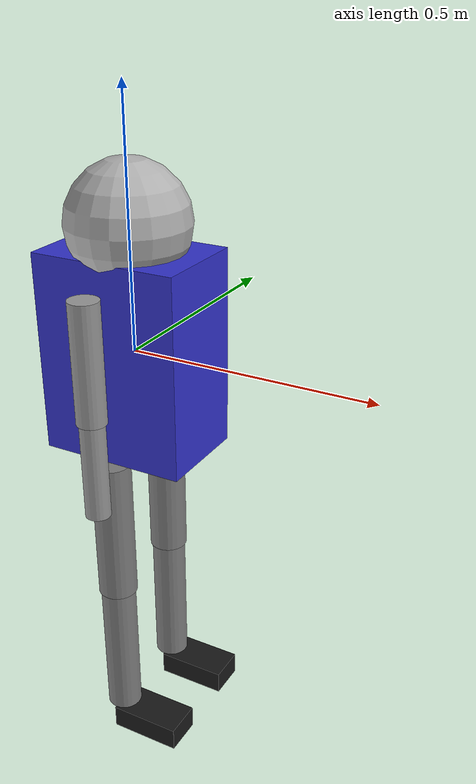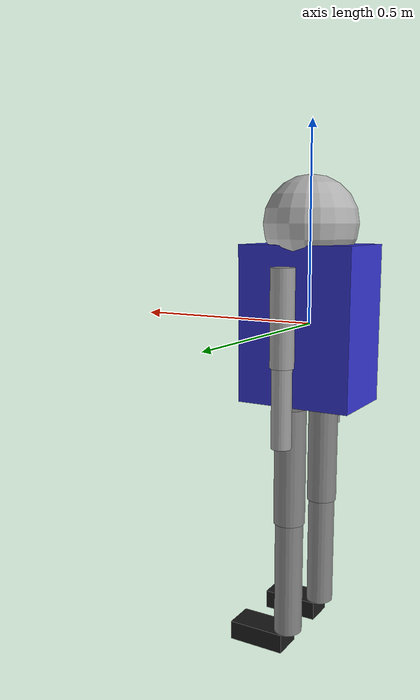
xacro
<?xml version="1.0"?>
<robot xmlns:xacro="http://www.ros.org/wiki/xacro" name="humanoid_xacro">

  <!-- Include macros -->
  <xacro:include filename="$(find humanoid_description)/urdf/macros/inertia.xacro"/>
  <xacro:include filename="$(find humanoid_description)/urdf/macros/leg.xacro"/>

  <!-- ========== PROPERTIES ========== -->
  <xacro:property name="leg_hip_length" value="0.3"/>
  <xacro:property name="leg_knee_length" value="0.3"/>
  <xacro:property name="leg_foot_length" value="0.15"/>
  <xacro:property name="leg_foot_width" value="0.08"/>
  <xacro:property name="leg_hip_mass" value="3.0"/>
  <xacro:property name="leg_knee_mass" value="2.0"/>
  <xacro:property name="leg_foot_mass" value="1.0"/>
  <xacro:property name="leg_radius" value="0.04"/>

  <xacro:property name="arm_shoulder_length" value="0.24"/>
  <xacro:property name="arm_elbow_length" value="0.2"/>
  <xacro:property name="arm_shoulder_mass" value="1.5"/>
  <xacro:property name="arm_elbow_mass" value="1.0"/>
  <xacro:property name="arm_radius" value="0.03"/>

  <!-- ========== TORSO (BASE LINK) ========== -->
  <link name="base_link">
    <visual>
      <geometry>
        <box size="0.3 0.2 0.4"/>
      </geometry>
      <material name="torso_blue">
        <color rgba="0.2 0.2 0.8 1.0"/>
      </material>
    </visual>
    <collision>
      <geometry>
        <box size="0.3 0.2 0.4"/>
      </geometry>
    </collision>
    <xacro:box_inertia mass="15.0" x="0.3" y="0.2" z="0.4" xyz="0 0 0"/>
  </link>

  <!-- ========== HEAD ========== -->
  <link name="head">
    <visual>
      <geometry>
        <sphere radius="0.12"/>
      </geometry>
      <material name="head_gray">
        <color rgba="0.7 0.7 0.7 1.0"/>
      </material>
    </visual>
    <collision>
      <geometry>
        <sphere radius="0.12"/>
      </geometry>
    </collision>
    <xacro:sphere_inertia mass="2.0" radius="0.12"/>
  </link>

  <joint name="neck_joint" type="revolute">
    <parent link="base_link"/>
    <child link="head"/>
    <origin xyz="0 0 0.25" rpy="0 0 0"/>
    <axis xyz="0 0 1"/>
    <limit lower="-0.785" upper="0.785" effort="10.0" velocity="2.0"/>
    <dynamics damping="0.5" friction="0.1"/>
  </joint>

  <!-- ========== INSTANTIATE LEGS ========== -->
  <xacro:leg prefix="left" reflect="1">
    <origin xyz="0 0.1 -0.2" rpy="0 0 0"/>
  </xacro:leg>

  <xacro:leg prefix="right" reflect="-1">
    <origin xyz="0 -0.1 -0.2" rpy="0 0 0"/>
  </xacro:leg>

  <!-- ========== LEFT ARM ========== -->
  <link name="left_shoulder">
    <visual>
      <origin xyz="0 0 ${-arm_shoulder_length/2}" rpy="0 0 0"/>
      <geometry>
        <cylinder length="${arm_shoulder_length}" radius="${arm_radius}"/>
      </geometry>
      <material name="arm_gray">
        <color rgba="0.6 0.6 0.6 1.0"/>
      </material>
    </visual>
    <collision>
      <origin xyz="0 0 ${-arm_shoulder_length/2}" rpy="0 0 0"/>
      <geometry>
        <cylinder length="${arm_shoulder_length}" radius="${arm_radius}"/>
      </geometry>
    </collision>
    <xacro:cylinder_inertia mass="${arm_shoulder_mass}"
                            radius="${arm_radius}"
                            length="${arm_shoulder_length}"
                            xyz="0 0 ${-arm_shoulder_length/2}"/>
  </link>

  <joint name="left_shoulder_joint" type="revolute">
    <parent link="base_link"/>
    <child link="left_shoulder"/>
    <origin xyz="0 0.15 0.15" rpy="0 0 0"/>
    <axis xyz="0 1 0"/>
    <limit lower="-1.57" upper="1.57" effort="80.0" velocity="2.5"/>
    <dynamics damping="0.5" friction="0.1"/>
  </joint>

  <link name="left_elbow">
    <visual>
      <origin xyz="0 0 ${-arm_elbow_length/2}" rpy="0 0 0"/>
      <geometry>
        <cylinder length="${arm_elbow_length}" radius="${arm_radius * 0.85}"/>
      </geometry>
      <material name="arm_gray"/>
    </visual>
    <collision>
      <origin xyz="0 0 ${-arm_elbow_length/2}" rpy="0 0 0"/>
      <geometry>
        <cylinder length="${arm_elbow_length}" radius="${arm_radius * 0.85}"/>
      </geometry>
    </collision>
    <xacro:cylinder_inertia mass="${arm_elbow_mass}"
                            radius="${arm_radius * 0.85}"
                            length="${arm_elbow_length}"
                            xyz="0 0 ${-arm_elbow_length/2}"/>
  </link>

  <joint name="left_elbow_joint" type="revolute">
    <parent link="left_shoulder"/>
    <child link="left_elbow"/>
    <origin xyz="0 0 ${-arm_shoulder_length}" rpy="0 0 0"/>
    <axis xyz="0 1 0"/>
    <limit lower="0.0" upper="2.356" effort="60.0" velocity="2.5"/>
    <dynamics damping="0.3" friction="0.05"/>
  </joint>

  <!-- ========== RIGHT ARM (SYMMETRIC) ========== -->
  <link name="right_shoulder">
    <visual>
      <origin xyz="0 0 ${-arm_shoulder_length/2}" rpy="0 0 0"/>
      <geometry>
        <cylinder length="${arm_shoulder_length}" radius="${arm_radius}"/>
      </geometry>
      <material name="arm_gray"/>
    </visual>
    <collision>
      <origin xyz="0 0 ${-arm_shoulder_length/2}" rpy="0 0 0"/>
      <geometry>
        <cylinder length="${arm_shoulder_length}" radius="${arm_radius}"/>
      </geometry>
    </collision>
    <xacro:cylinder_inertia mass="${arm_shoulder_mass}"
                            radius="${arm_radius}"
                            length="${arm_shoulder_length}"
                            xyz="0 0 ${-arm_shoulder_length/2}"/>
  </link>

  <joint name="right_shoulder_joint" type="revolute">
    <parent link="base_link"/>
    <child link="right_shoulder"/>
    <origin xyz="0 -0.15 0.15" rpy="0 0 0"/>
    <axis xyz="0 1 0"/>
    <limit lower="-1.57" upper="1.57" effort="80.0" velocity="2.5"/>
    <dynamics damping="0.5" friction="0.1"/>
  </joint>

  <link name="right_elbow">
    <visual>
      <origin xyz="0 0 ${-arm_elbow_length/2}" rpy="0 0 0"/>
      <geometry>
        <cylinder length="${arm_elbow_length}" radius="${arm_radius * 0.85}"/>
      </geometry>
      <material name="arm_gray"/>
    </visual>
    <collision>
      <origin xyz="0 0 ${-arm_elbow_length/2}" rpy="0 0 0"/>
      <geometry>
        <cylinder length="${arm_elbow_length}" radius="${arm_radius * 0.85}"/>
      </geometry>
    </collision>
    <xacro:cylinder_inertia mass="${arm_elbow_mass}"
                            radius="${arm_radius * 0.85}"
                            length="${arm_elbow_length}"
                            xyz="0 0 ${-arm_elbow_length/2}"/>
  </link>

  <joint name="right_elbow_joint" type="revolute">
    <parent link="right_shoulder"/>
    <child link="right_elbow"/>
    <origin xyz="0 0 ${-arm_shoulder_length}" rpy="0 0 0"/>
    <axis xyz="0 1 0"/>
    <limit lower="0.0" upper="2.356" effort="60.0" velocity="2.5"/>
    <dynamics damping="0.3" friction="0.05"/>
  </joint>

</robot>

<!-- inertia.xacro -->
<robot xmlns:xacro="http://www.ros.org/wiki/xacro">

  <!-- Cylinder Inertia (axis along Z) -->
  <xacro:macro name="cylinder_inertia" params="mass radius length xyz">
    <inertial>
      <origin xyz="${xyz}" rpy="0 0 0"/>
      <mass value="${mass}"/>
      <inertia ixx="${mass * (3*radius*radius + length*length) / 12}"
               ixy="0.0" ixz="0.0"
               iyy="${mass * (3*radius*radius + length*length) / 12}"
               iyz="0.0"
               izz="${mass * radius * radius / 2}"/>
    </inertial>
  </xacro:macro>

  <!-- Box Inertia -->
  <xacro:macro name="box_inertia" params="mass x y z xyz">
    <inertial>
      <origin xyz="${xyz}" rpy="0 0 0"/>
      <mass value="${mass}"/>
      <inertia ixx="${mass * (y*y + z*z) / 12}"
               ixy="0.0" ixz="0.0"
               iyy="${mass * (x*x + z*z) / 12}"
               iyz="0.0"
               izz="${mass * (x*x + y*y) / 12}"/>
    </inertial>
  </xacro:macro>

  <!-- Sphere Inertia -->
  <xacro:macro name="sphere_inertia" params="mass radius">
    <inertial>
      <mass value="${mass}"/>
      <inertia ixx="${2 * mass * radius * radius / 5}"
               ixy="0.0" ixz="0.0"
               iyy="${2 * mass * radius * radius / 5}"
               iyz="0.0"
               izz="${2 * mass * radius * radius / 5}"/>
    </inertial>
  </xacro:macro>

</robot>

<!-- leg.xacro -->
<robot xmlns:xacro="http://www.ros.org/wiki/xacro">

  <xacro:macro name="leg" params="prefix reflect *origin">

    <!-- Hip Link -->
    <link name="${prefix}_hip">
      <visual>
        <origin xyz="0 0 ${-leg_hip_length/2}" rpy="0 0 0"/>
        <geometry>
          <cylinder length="${leg_hip_length}" radius="${leg_radius}"/>
        </geometry>
        <material name="leg_gray">
          <color rgba="0.5 0.5 0.5 1.0"/>
        </material>
      </visual>
      <collision>
        <origin xyz="0 0 ${-leg_hip_length/2}" rpy="0 0 0"/>
        <geometry>
          <cylinder length="${leg_hip_length}" radius="${leg_radius}"/>
        </geometry>
      </collision>
      <xacro:cylinder_inertia mass="${leg_hip_mass}"
                              radius="${leg_radius}"
                              length="${leg_hip_length}"
                              xyz="0 0 ${-leg_hip_length/2}"/>
    </link>

    <joint name="${prefix}_hip_joint" type="revolute">
      <xacro:insert_block name="origin"/>
      <parent link="base_link"/>
      <child link="${prefix}_hip"/>
      <axis xyz="0 1 0"/>
      <limit lower="-1.57" upper="1.57" effort="150.0" velocity="3.0"/>
      <dynamics damping="1.0" friction="0.2"/>
    </joint>

    <!-- Knee Link -->
    <link name="${prefix}_knee">
      <visual>
        <origin xyz="0 0 ${-leg_knee_length/2}" rpy="0 0 0"/>
        <geometry>
          <cylinder length="${leg_knee_length}" radius="${leg_radius * 0.9}"/>
        </geometry>
        <material name="leg_gray"/>
      </visual>
      <collision>
        <origin xyz="0 0 ${-leg_knee_length/2}" rpy="0 0 0"/>
        <geometry>
          <cylinder length="${leg_knee_length}" radius="${leg_radius * 0.9}"/>
        </geometry>
      </collision>
      <xacro:cylinder_inertia mass="${leg_knee_mass}"
                              radius="${leg_radius * 0.9}"
                              length="${leg_knee_length}"
                              xyz="0 0 ${-leg_knee_length/2}"/>
    </link>

    <joint name="${prefix}_knee_joint" type="revolute">
      <parent link="${prefix}_hip"/>
      <child link="${prefix}_knee"/>
      <origin xyz="0 0 ${-leg_hip_length}" rpy="0 0 0"/>
      <axis xyz="0 1 0"/>
      <limit lower="0.0" upper="2.356" effort="150.0" velocity="3.0"/>
      <dynamics damping="1.0" friction="0.2"/>
    </joint>

    <!-- Ankle/Foot -->
    <link name="${prefix}_foot">
      <visual>
        <origin xyz="${leg_foot_length/2} 0 -0.025" rpy="0 0 0"/>
        <geometry>
          <box size="${leg_foot_length} ${leg_foot_width} 0.05"/>
        </geometry>
        <material name="foot_black">
          <color rgba="0.1 0.1 0.1 1.0"/>
        </material>
      </visual>
      <collision>
        <origin xyz="${leg_foot_length/2} 0 -0.025" rpy="0 0 0"/>
        <geometry>
          <box size="${leg_foot_length} ${leg_foot_width} 0.05"/>
        </geometry>
      </collision>
      <xacro:box_inertia mass="${leg_foot_mass}"
                         x="${leg_foot_length}" y="${leg_foot_width}" z="0.05"
                         xyz="${leg_foot_length/2} 0 -0.025"/>
    </link>

    <joint name="${prefix}_ankle_joint" type="revolute">
      <parent link="${prefix}_knee"/>
      <child link="${prefix}_foot"/>
      <origin xyz="0 0 ${-leg_knee_length}" rpy="0 0 0"/>
      <axis xyz="0 1 0"/>
      <limit lower="-0.785" upper="0.785" effort="100.0" velocity="2.0"/>
      <dynamics damping="0.5" friction="0.1"/>
    </joint>

  </xacro:macro>

</robot>
